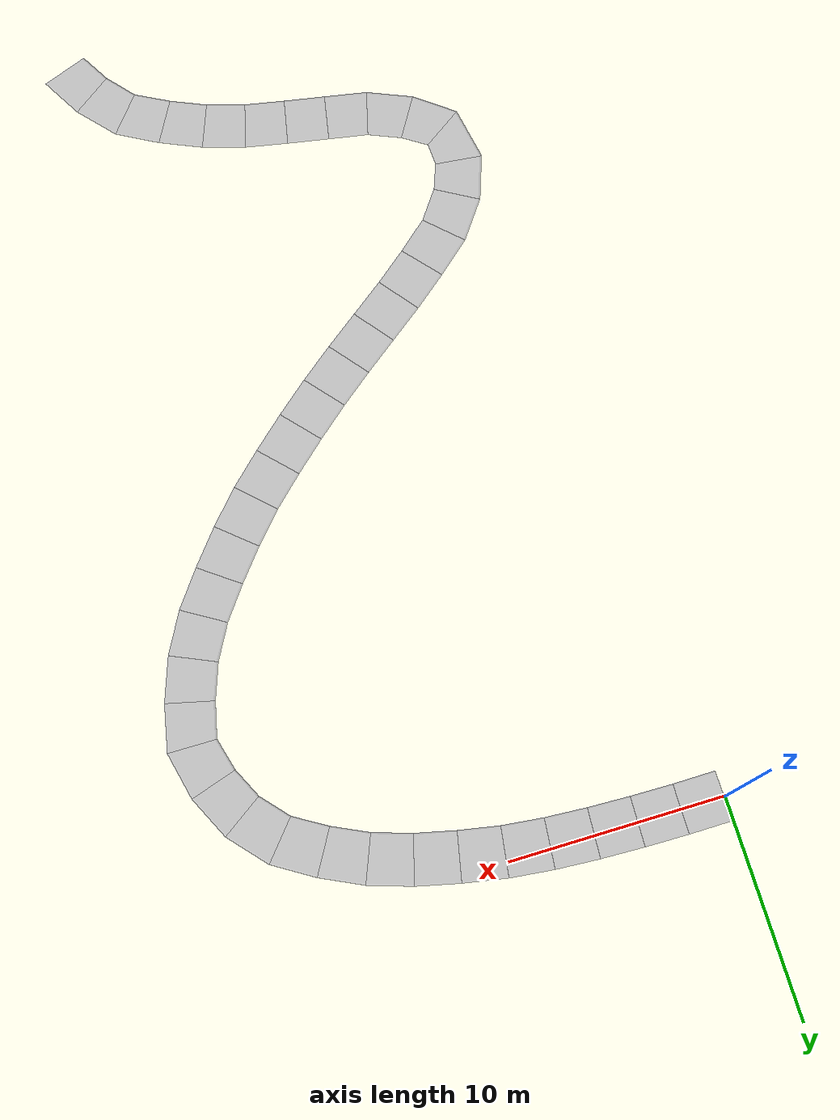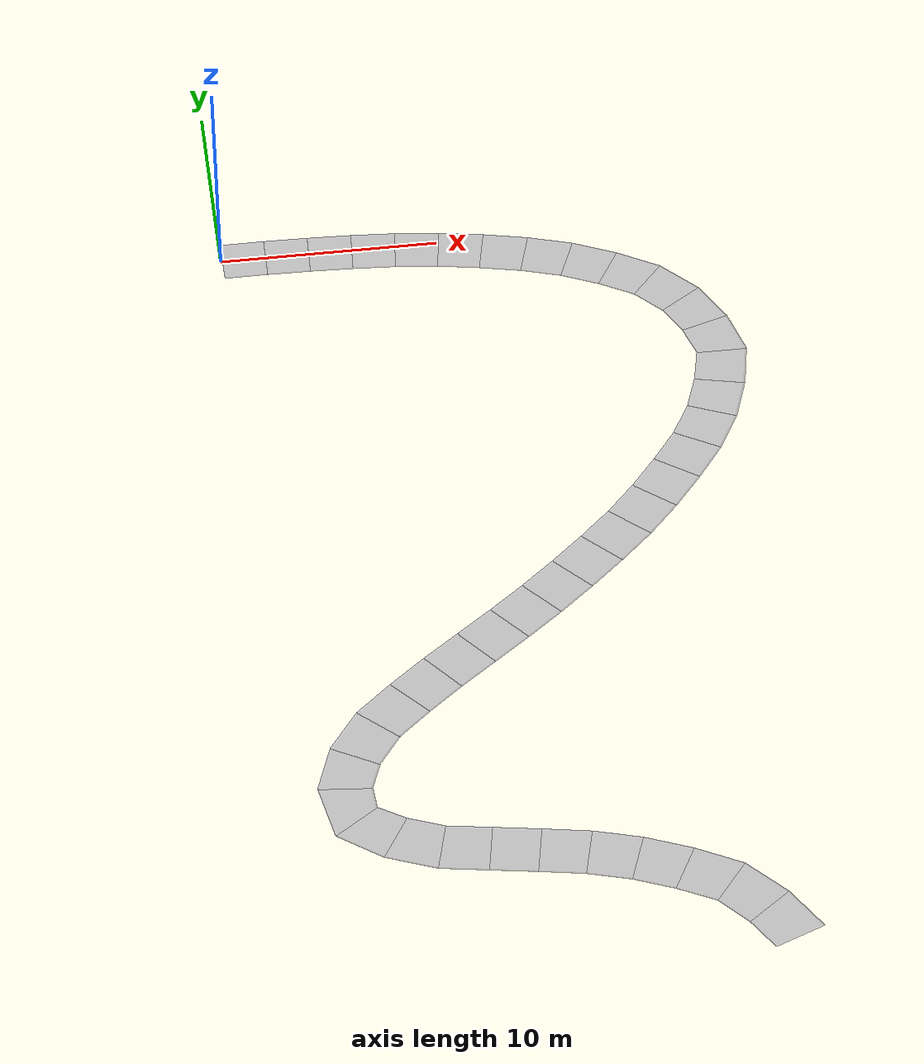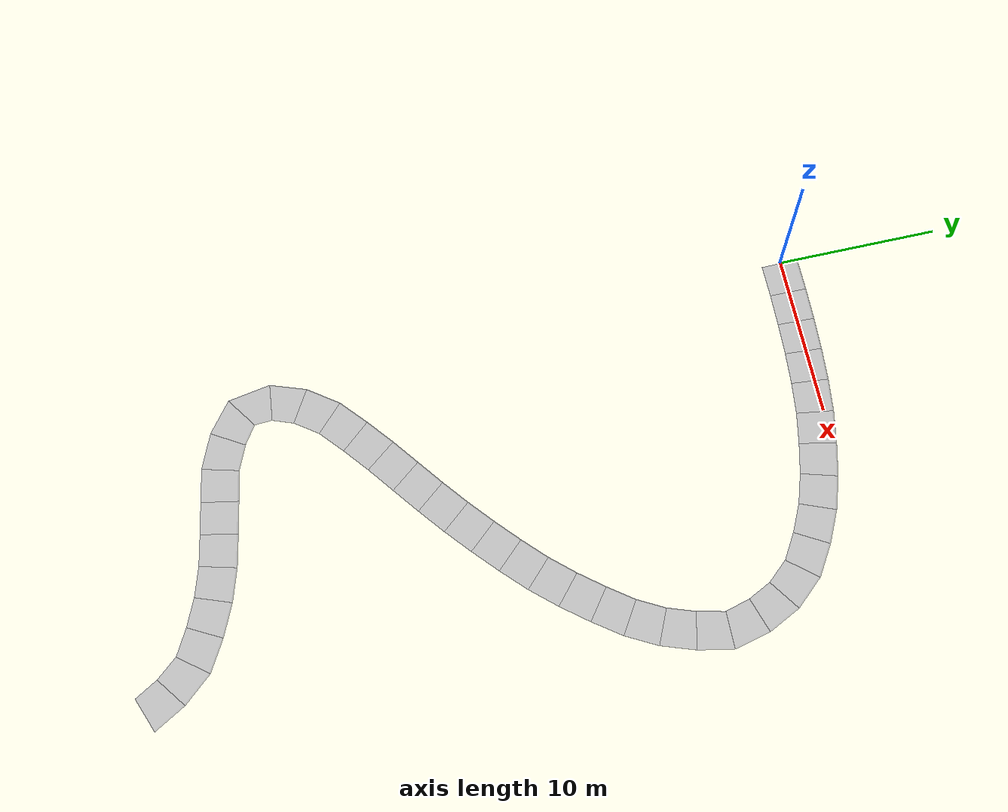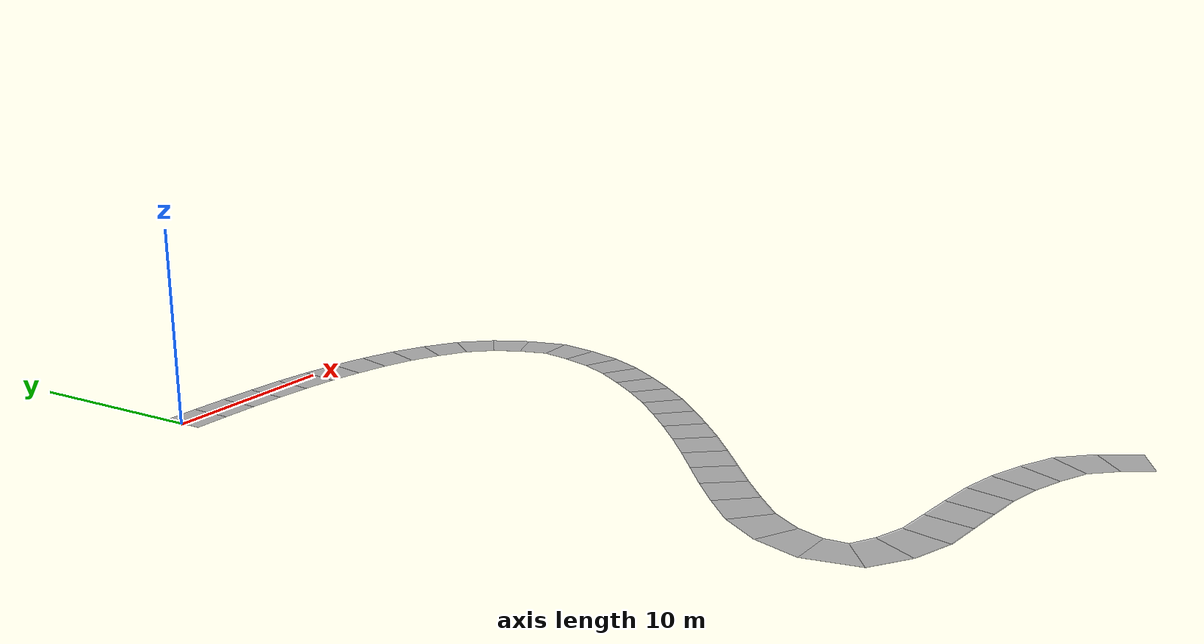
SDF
<sdf version="1.6">
 <world name="track1">
  <gravity>0 0 -9.8</gravity>
  <model name="RoadBlock.000">
   <static>1</static>
   <link name="link_d0">
    <inertial>
     <mass>0</mass>
     <inertia>
      <ixx>0.166667</ixx>
      <ixy>0</ixy>
      <ixz>0</ixz>
      <iyy>0.166667</iyy>
      <iyz>0</iyz>
      <izz>0.166667</izz>
     </inertia>
    </inertial>
    <collision concave="yes" name="collision_0">
     <geometry><mesh><scale>1 1 1</scale><uri>RoadBlock.000.obj</uri></mesh></geometry>
    </collision>
    <visual name="visual">
     <geometry><mesh><scale>1 1 1</scale><uri>RoadBlock.000.obj</uri></mesh></geometry>
    </visual>
   </link>
  </model>
  <model name="RoadBlock.001">
   <static>1</static>
   <link name="link_d0">
    <inertial>
     <mass>0</mass>
     <inertia>
      <ixx>0.166667</ixx>
      <ixy>0</ixy>
      <ixz>0</ixz>
      <iyy>0.166667</iyy>
      <iyz>0</iyz>
      <izz>0.166667</izz>
     </inertia>
    </inertial>
    <collision concave="yes" name="collision_0">
     <geometry><mesh><scale>1 1 1</scale><uri>RoadBlock.001.obj</uri></mesh></geometry>
    </collision>
    <visual name="visual">
     <geometry><mesh><scale>1 1 1</scale><uri>RoadBlock.001.obj</uri></mesh></geometry>
    </visual>
   </link>
  </model>
  <model name="RoadBlock.002">
   <static>1</static>
   <link name="link_d0">
    <inertial>
     <mass>0</mass>
     <inertia>
      <ixx>0.166667</ixx>
      <ixy>0</ixy>
      <ixz>0</ixz>
      <iyy>0.166667</iyy>
      <iyz>0</iyz>
      <izz>0.166667</izz>
     </inertia>
    </inertial>
    <collision concave="yes" name="collision_0">
     <geometry><mesh><scale>1 1 1</scale><uri>RoadBlock.002.obj</uri></mesh></geometry>
    </collision>
    <visual name="visual">
     <geometry><mesh><scale>1 1 1</scale><uri>RoadBlock.002.obj</uri></mesh></geometry>
    </visual>
   </link>
  </model>
  <model name="RoadBlock.003">
   <static>1</static>
   <link name="link_d0">
    <inertial>
     <mass>0</mass>
     <inertia>
      <ixx>0.166667</ixx>
      <ixy>0</ixy>
      <ixz>0</ixz>
      <iyy>0.166667</iyy>
      <iyz>0</iyz>
      <izz>0.166667</izz>
     </inertia>
    </inertial>
    <collision concave="yes" name="collision_0">
     <geometry><mesh><scale>1 1 1</scale><uri>RoadBlock.003.obj</uri></mesh></geometry>
    </collision>
    <visual name="visual">
     <geometry><mesh><scale>1 1 1</scale><uri>RoadBlock.003.obj</uri></mesh></geometry>
    </visual>
   </link>
  </model>
  <model name="RoadBlock.004">
   <static>1</static>
   <link name="link_d0">
    <inertial>
     <mass>0</mass>
     <inertia>
      <ixx>0.166667</ixx>
      <ixy>0</ixy>
      <ixz>0</ixz>
      <iyy>0.166667</iyy>
      <iyz>0</iyz>
      <izz>0.166667</izz>
     </inertia>
    </inertial>
    <collision concave="yes" name="collision_0">
     <geometry><mesh><scale>1 1 1</scale><uri>RoadBlock.004.obj</uri></mesh></geometry>
    </collision>
    <visual name="visual">
     <geometry><mesh><scale>1 1 1</scale><uri>RoadBlock.004.obj</uri></mesh></geometry>
    </visual>
   </link>
  </model>
  <model name="RoadBlock.005">
   <static>1</static>
   <link name="link_d0">
    <inertial>
     <mass>0</mass>
     <inertia>
      <ixx>0.166667</ixx>
      <ixy>0</ixy>
      <ixz>0</ixz>
      <iyy>0.166667</iyy>
      <iyz>0</iyz>
      <izz>0.166667</izz>
     </inertia>
    </inertial>
    <collision concave="yes" name="collision_0">
     <geometry><mesh><scale>1 1 1</scale><uri>RoadBlock.005.obj</uri></mesh></geometry>
    </collision>
    <visual name="visual">
     <geometry><mesh><scale>1 1 1</scale><uri>RoadBlock.005.obj</uri></mesh></geometry>
    </visual>
   </link>
  </model>
  <model name="RoadBlock.006">
   <static>1</static>
   <link name="link_d0">
    <inertial>
     <mass>0</mass>
     <inertia>
      <ixx>0.166667</ixx>
      <ixy>0</ixy>
      <ixz>0</ixz>
      <iyy>0.166667</iyy>
      <iyz>0</iyz>
      <izz>0.166667</izz>
     </inertia>
    </inertial>
    <collision concave="yes" name="collision_0">
     <geometry><mesh><scale>1 1 1</scale><uri>RoadBlock.006.obj</uri></mesh></geometry>
    </collision>
    <visual name="visual">
     <geometry><mesh><scale>1 1 1</scale><uri>RoadBlock.006.obj</uri></mesh></geometry>
    </visual>
   </link>
  </model>
  <model name="RoadBlock.007">
   <static>1</static>
   <link name="link_d0">
    <inertial>
     <mass>0</mass>
     <inertia>
      <ixx>0.166667</ixx>
      <ixy>0</ixy>
      <ixz>0</ixz>
      <iyy>0.166667</iyy>
      <iyz>0</iyz>
      <izz>0.166667</izz>
     </inertia>
    </inertial>
    <collision concave="yes" name="collision_0">
     <geometry><mesh><scale>1 1 1</scale><uri>RoadBlock.007.obj</uri></mesh></geometry>
    </collision>
    <visual name="visual">
     <geometry><mesh><scale>1 1 1</scale><uri>RoadBlock.007.obj</uri></mesh></geometry>
    </visual>
   </link>
  </model>
  <model name="RoadBlock.008">
   <static>1</static>
   <link name="link_d0">
    <inertial>
     <mass>0</mass>
     <inertia>
      <ixx>0.166667</ixx>
      <ixy>0</ixy>
      <ixz>0</ixz>
      <iyy>0.166667</iyy>
      <iyz>0</iyz>
      <izz>0.166667</izz>
     </inertia>
    </inertial>
    <collision concave="yes" name="collision_0">
     <geometry><mesh><scale>1 1 1</scale><uri>RoadBlock.008.obj</uri></mesh></geometry>
    </collision>
    <visual name="visual">
     <geometry><mesh><scale>1 1 1</scale><uri>RoadBlock.008.obj</uri></mesh></geometry>
    </visual>
   </link>
  </model>
  <model name="RoadBlock.009">
   <static>1</static>
   <link name="link_d0">
    <inertial>
     <mass>0</mass>
     <inertia>
      <ixx>0.166667</ixx>
      <ixy>0</ixy>
      <ixz>0</ixz>
      <iyy>0.166667</iyy>
      <iyz>0</iyz>
      <izz>0.166667</izz>
     </inertia>
    </inertial>
    <collision concave="yes" name="collision_0">
     <geometry><mesh><scale>1 1 1</scale><uri>RoadBlock.009.obj</uri></mesh></geometry>
    </collision>
    <visual name="visual">
     <geometry><mesh><scale>1 1 1</scale><uri>RoadBlock.009.obj</uri></mesh></geometry>
    </visual>
   </link>
  </model>
  <model name="RoadBlock.010">
   <static>1</static>
   <link name="link_d0">
    <inertial>
     <mass>0</mass>
     <inertia>
      <ixx>0.166667</ixx>
      <ixy>0</ixy>
      <ixz>0</ixz>
      <iyy>0.166667</iyy>
      <iyz>0</iyz>
      <izz>0.166667</izz>
     </inertia>
    </inertial>
    <collision concave="yes" name="collision_0">
     <geometry><mesh><scale>1 1 1</scale><uri>RoadBlock.010.obj</uri></mesh></geometry>
    </collision>
    <visual name="visual">
     <geometry><mesh><scale>1 1 1</scale><uri>RoadBlock.010.obj</uri></mesh></geometry>
    </visual>
   </link>
  </model>
  <model name="RoadBlock.011">
   <static>1</static>
   <link name="link_d0">
    <inertial>
     <mass>0</mass>
     <inertia>
      <ixx>0.166667</ixx>
      <ixy>0</ixy>
      <ixz>0</ixz>
      <iyy>0.166667</iyy>
      <iyz>0</iyz>
      <izz>0.166667</izz>
     </inertia>
    </inertial>
    <collision concave="yes" name="collision_0">
     <geometry><mesh><scale>1 1 1</scale><uri>RoadBlock.011.obj</uri></mesh></geometry>
    </collision>
    <visual name="visual">
     <geometry><mesh><scale>1 1 1</scale><uri>RoadBlock.011.obj</uri></mesh></geometry>
    </visual>
   </link>
  </model>
  <model name="RoadBlock.012">
   <static>1</static>
   <link name="link_d0">
    <inertial>
     <mass>0</mass>
     <inertia>
      <ixx>0.166667</ixx>
      <ixy>0</ixy>
      <ixz>0</ixz>
      <iyy>0.166667</iyy>
      <iyz>0</iyz>
      <izz>0.166667</izz>
     </inertia>
    </inertial>
    <collision concave="yes" name="collision_0">
     <geometry><mesh><scale>1 1 1</scale><uri>RoadBlock.012.obj</uri></mesh></geometry>
    </collision>
    <visual name="visual">
     <geometry><mesh><scale>1 1 1</scale><uri>RoadBlock.012.obj</uri></mesh></geometry>
    </visual>
   </link>
  </model>
  <model name="RoadBlock.013">
   <static>1</static>
   <link name="link_d0">
    <inertial>
     <mass>0</mass>
     <inertia>
      <ixx>0.166667</ixx>
      <ixy>0</ixy>
      <ixz>0</ixz>
      <iyy>0.166667</iyy>
      <iyz>0</iyz>
      <izz>0.166667</izz>
     </inertia>
    </inertial>
    <collision concave="yes" name="collision_0">
     <geometry><mesh><scale>1 1 1</scale><uri>RoadBlock.013.obj</uri></mesh></geometry>
    </collision>
    <visual name="visual">
     <geometry><mesh><scale>1 1 1</scale><uri>RoadBlock.013.obj</uri></mesh></geometry>
    </visual>
   </link>
  </model>
  <model name="RoadBlock.014">
   <static>1</static>
   <link name="link_d0">
    <inertial>
     <mass>0</mass>
     <inertia>
      <ixx>0.166667</ixx>
      <ixy>0</ixy>
      <ixz>0</ixz>
      <iyy>0.166667</iyy>
      <iyz>0</iyz>
      <izz>0.166667</izz>
     </inertia>
    </inertial>
    <collision concave="yes" name="collision_0">
     <geometry><mesh><scale>1 1 1</scale><uri>RoadBlock.014.obj</uri></mesh></geometry>
    </collision>
    <visual name="visual">
     <geometry><mesh><scale>1 1 1</scale><uri>RoadBlock.014.obj</uri></mesh></geometry>
    </visual>
   </link>
  </model>
  <model name="RoadBlock.015">
   <static>1</static>
   <link name="link_d0">
    <inertial>
     <mass>0</mass>
     <inertia>
      <ixx>0.166667</ixx>
      <ixy>0</ixy>
      <ixz>0</ixz>
      <iyy>0.166667</iyy>
      <iyz>0</iyz>
      <izz>0.166667</izz>
     </inertia>
    </inertial>
    <collision concave="yes" name="collision_0">
     <geometry><mesh><scale>1 1 1</scale><uri>RoadBlock.015.obj</uri></mesh></geometry>
    </collision>
    <visual name="visual">
     <geometry><mesh><scale>1 1 1</scale><uri>RoadBlock.015.obj</uri></mesh></geometry>
    </visual>
   </link>
  </model>
  <model name="RoadBlock.016">
   <static>1</static>
   <link name="link_d0">
    <inertial>
     <mass>0</mass>
     <inertia>
      <ixx>0.166667</ixx>
      <ixy>0</ixy>
      <ixz>0</ixz>
      <iyy>0.166667</iyy>
      <iyz>0</iyz>
      <izz>0.166667</izz>
     </inertia>
    </inertial>
    <collision concave="yes" name="collision_0">
     <geometry><mesh><scale>1 1 1</scale><uri>RoadBlock.016.obj</uri></mesh></geometry>
    </collision>
    <visual name="visual">
     <geometry><mesh><scale>1 1 1</scale><uri>RoadBlock.016.obj</uri></mesh></geometry>
    </visual>
   </link>
  </model>
  <model name="RoadBlock.017">
   <static>1</static>
   <link name="link_d0">
    <inertial>
     <mass>0</mass>
     <inertia>
      <ixx>0.166667</ixx>
      <ixy>0</ixy>
      <ixz>0</ixz>
      <iyy>0.166667</iyy>
      <iyz>0</iyz>
      <izz>0.166667</izz>
     </inertia>
    </inertial>
    <collision concave="yes" name="collision_0">
     <geometry><mesh><scale>1 1 1</scale><uri>RoadBlock.017.obj</uri></mesh></geometry>
    </collision>
    <visual name="visual">
     <geometry><mesh><scale>1 1 1</scale><uri>RoadBlock.017.obj</uri></mesh></geometry>
    </visual>
   </link>
  </model>
  <model name="RoadBlock.018">
   <static>1</static>
   <link name="link_d0">
    <inertial>
     <mass>0</mass>
     <inertia>
      <ixx>0.166667</ixx>
      <ixy>0</ixy>
      <ixz>0</ixz>
      <iyy>0.166667</iyy>
      <iyz>0</iyz>
      <izz>0.166667</izz>
     </inertia>
    </inertial>
    <collision concave="yes" name="collision_0">
     <geometry><mesh><scale>1 1 1</scale><uri>RoadBlock.018.obj</uri></mesh></geometry>
    </collision>
    <visual name="visual">
     <geometry><mesh><scale>1 1 1</scale><uri>RoadBlock.018.obj</uri></mesh></geometry>
    </visual>
   </link>
  </model>
  <model name="RoadBlock.019">
   <static>1</static>
   <link name="link_d0">
    <inertial>
     <mass>0</mass>
     <inertia>
      <ixx>0.166667</ixx>
      <ixy>0</ixy>
      <ixz>0</ixz>
      <iyy>0.166667</iyy>
      <iyz>0</iyz>
      <izz>0.166667</izz>
     </inertia>
    </inertial>
    <collision concave="yes" name="collision_0">
     <geometry><mesh><scale>1 1 1</scale><uri>RoadBlock.019.obj</uri></mesh></geometry>
    </collision>
    <visual name="visual">
     <geometry><mesh><scale>1 1 1</scale><uri>RoadBlock.019.obj</uri></mesh></geometry>
    </visual>
   </link>
  </model>
  <model name="RoadBlock.020">
   <static>1</static>
   <link name="link_d0">
    <inertial>
     <mass>0</mass>
     <inertia>
      <ixx>0.166667</ixx>
      <ixy>0</ixy>
      <ixz>0</ixz>
      <iyy>0.166667</iyy>
      <iyz>0</iyz>
      <izz>0.166667</izz>
     </inertia>
    </inertial>
    <collision concave="yes" name="collision_0">
     <geometry><mesh><scale>1 1 1</scale><uri>RoadBlock.020.obj</uri></mesh></geometry>
    </collision>
    <visual name="visual">
     <geometry><mesh><scale>1 1 1</scale><uri>RoadBlock.020.obj</uri></mesh></geometry>
    </visual>
   </link>
  </model>
  <model name="RoadBlock.021">
   <static>1</static>
   <link name="link_d0">
    <inertial>
     <mass>0</mass>
     <inertia>
      <ixx>0.166667</ixx>
      <ixy>0</ixy>
      <ixz>0</ixz>
      <iyy>0.166667</iyy>
      <iyz>0</iyz>
      <izz>0.166667</izz>
     </inertia>
    </inertial>
    <collision concave="yes" name="collision_0">
     <geometry><mesh><scale>1 1 1</scale><uri>RoadBlock.021.obj</uri></mesh></geometry>
    </collision>
    <visual name="visual">
     <geometry><mesh><scale>1 1 1</scale><uri>RoadBlock.021.obj</uri></mesh></geometry>
    </visual>
   </link>
  </model>
  <model name="RoadBlock.022">
   <static>1</static>
   <link name="link_d0">
    <inertial>
     <mass>0</mass>
     <inertia>
      <ixx>0.166667</ixx>
      <ixy>0</ixy>
      <ixz>0</ixz>
      <iyy>0.166667</iyy>
      <iyz>0</iyz>
      <izz>0.166667</izz>
     </inertia>
    </inertial>
    <collision concave="yes" name="collision_0">
     <geometry><mesh><scale>1 1 1</scale><uri>RoadBlock.022.obj</uri></mesh></geometry>
    </collision>
    <visual name="visual">
     <geometry><mesh><scale>1 1 1</scale><uri>RoadBlock.022.obj</uri></mesh></geometry>
    </visual>
   </link>
  </model>
  <model name="RoadBlock.023">
   <static>1</static>
   <link name="link_d0">
    <inertial>
     <mass>0</mass>
     <inertia>
      <ixx>0.166667</ixx>
      <ixy>0</ixy>
      <ixz>0</ixz>
      <iyy>0.166667</iyy>
      <iyz>0</iyz>
      <izz>0.166667</izz>
     </inertia>
    </inertial>
    <collision concave="yes" name="collision_0">
     <geometry><mesh><scale>1 1 1</scale><uri>RoadBlock.023.obj</uri></mesh></geometry>
    </collision>
    <visual name="visual">
     <geometry><mesh><scale>1 1 1</scale><uri>RoadBlock.023.obj</uri></mesh></geometry>
    </visual>
   </link>
  </model>
  <model name="RoadBlock.024">
   <static>1</static>
   <link name="link_d0">
    <inertial>
     <mass>0</mass>
     <inertia>
      <ixx>0.166667</ixx>
      <ixy>0</ixy>
      <ixz>0</ixz>
      <iyy>0.166667</iyy>
      <iyz>0</iyz>
      <izz>0.166667</izz>
     </inertia>
    </inertial>
    <collision concave="yes" name="collision_0">
     <geometry><mesh><scale>1 1 1</scale><uri>RoadBlock.024.obj</uri></mesh></geometry>
    </collision>
    <visual name="visual">
     <geometry><mesh><scale>1 1 1</scale><uri>RoadBlock.024.obj</uri></mesh></geometry>
    </visual>
   </link>
  </model>
  <model name="RoadBlock.025">
   <static>1</static>
   <link name="link_d0">
    <inertial>
     <mass>0</mass>
     <inertia>
      <ixx>0.166667</ixx>
      <ixy>0</ixy>
      <ixz>0</ixz>
      <iyy>0.166667</iyy>
      <iyz>0</iyz>
      <izz>0.166667</izz>
     </inertia>
    </inertial>
    <collision concave="yes" name="collision_0">
     <geometry><mesh><scale>1 1 1</scale><uri>RoadBlock.025.obj</uri></mesh></geometry>
    </collision>
    <visual name="visual">
     <geometry><mesh><scale>1 1 1</scale><uri>RoadBlock.025.obj</uri></mesh></geometry>
    </visual>
   </link>
  </model>
  <model name="RoadBlock.026">
   <static>1</static>
   <link name="link_d0">
    <inertial>
     <mass>0</mass>
     <inertia>
      <ixx>0.166667</ixx>
      <ixy>0</ixy>
      <ixz>0</ixz>
      <iyy>0.166667</iyy>
      <iyz>0</iyz>
      <izz>0.166667</izz>
     </inertia>
    </inertial>
    <collision concave="yes" name="collision_0">
     <geometry><mesh><scale>1 1 1</scale><uri>RoadBlock.026.obj</uri></mesh></geometry>
    </collision>
    <visual name="visual">
     <geometry><mesh><scale>1 1 1</scale><uri>RoadBlock.026.obj</uri></mesh></geometry>
    </visual>
   </link>
  </model>
  <model name="RoadBlock.027">
   <static>1</static>
   <link name="link_d0">
    <inertial>
     <mass>0</mass>
     <inertia>
      <ixx>0.166667</ixx>
      <ixy>0</ixy>
      <ixz>0</ixz>
      <iyy>0.166667</iyy>
      <iyz>0</iyz>
      <izz>0.166667</izz>
     </inertia>
    </inertial>
    <collision concave="yes" name="collision_0">
     <geometry><mesh><scale>1 1 1</scale><uri>RoadBlock.027.obj</uri></mesh></geometry>
    </collision>
    <visual name="visual">
     <geometry><mesh><scale>1 1 1</scale><uri>RoadBlock.027.obj</uri></mesh></geometry>
    </visual>
   </link>
  </model>
  <model name="RoadBlock.028">
   <static>1</static>
   <link name="link_d0">
    <inertial>
     <mass>0</mass>
     <inertia>
      <ixx>0.166667</ixx>
      <ixy>0</ixy>
      <ixz>0</ixz>
      <iyy>0.166667</iyy>
      <iyz>0</iyz>
      <izz>0.166667</izz>
     </inertia>
    </inertial>
    <collision concave="yes" name="collision_0">
     <geometry><mesh><scale>1 1 1</scale><uri>RoadBlock.028.obj</uri></mesh></geometry>
    </collision>
    <visual name="visual">
     <geometry><mesh><scale>1 1 1</scale><uri>RoadBlock.028.obj</uri></mesh></geometry>
    </visual>
   </link>
  </model>
  <model name="RoadBlock.029">
   <static>1</static>
   <link name="link_d0">
    <inertial>
     <mass>0</mass>
     <inertia>
      <ixx>0.166667</ixx>
      <ixy>0</ixy>
      <ixz>0</ixz>
      <iyy>0.166667</iyy>
      <iyz>0</iyz>
      <izz>0.166667</izz>
     </inertia>
    </inertial>
    <collision concave="yes" name="collision_0">
     <geometry><mesh><scale>1 1 1</scale><uri>RoadBlock.029.obj</uri></mesh></geometry>
    </collision>
    <visual name="visual">
     <geometry><mesh><scale>1 1 1</scale><uri>RoadBlock.029.obj</uri></mesh></geometry>
    </visual>
   </link>
  </model>
  <model name="RoadBlock.030">
   <static>1</static>
   <link name="link_d0">
    <inertial>
     <mass>0</mass>
     <inertia>
      <ixx>0.166667</ixx>
      <ixy>0</ixy>
      <ixz>0</ixz>
      <iyy>0.166667</iyy>
      <iyz>0</iyz>
      <izz>0.166667</izz>
     </inertia>
    </inertial>
    <collision concave="yes" name="collision_0">
     <geometry><mesh><scale>1 1 1</scale><uri>RoadBlock.030.obj</uri></mesh></geometry>
    </collision>
    <visual name="visual">
     <geometry><mesh><scale>1 1 1</scale><uri>RoadBlock.030.obj</uri></mesh></geometry>
    </visual>
   </link>
  </model>
  <model name="RoadBlock.031">
   <static>1</static>
   <link name="link_d0">
    <inertial>
     <mass>0</mass>
     <inertia>
      <ixx>0.166667</ixx>
      <ixy>0</ixy>
      <ixz>0</ixz>
      <iyy>0.166667</iyy>
      <iyz>0</iyz>
      <izz>0.166667</izz>
     </inertia>
    </inertial>
    <collision concave="yes" name="collision_0">
     <geometry><mesh><scale>1 1 1</scale><uri>RoadBlock.031.obj</uri></mesh></geometry>
    </collision>
    <visual name="visual">
     <geometry><mesh><scale>1 1 1</scale><uri>RoadBlock.031.obj</uri></mesh></geometry>
    </visual>
   </link>
  </model>
  <model name="RoadBlock.032">
   <static>1</static>
   <link name="link_d0">
    <inertial>
     <mass>0</mass>
     <inertia>
      <ixx>0.166667</ixx>
      <ixy>0</ixy>
      <ixz>0</ixz>
      <iyy>0.166667</iyy>
      <iyz>0</iyz>
      <izz>0.166667</izz>
     </inertia>
    </inertial>
    <collision concave="yes" name="collision_0">
     <geometry><mesh><scale>1 1 1</scale><uri>RoadBlock.032.obj</uri></mesh></geometry>
    </collision>
    <visual name="visual">
     <geometry><mesh><scale>1 1 1</scale><uri>RoadBlock.032.obj</uri></mesh></geometry>
    </visual>
   </link>
  </model>
  <model name="RoadBlock.033">
   <static>1</static>
   <link name="link_d0">
    <inertial>
     <mass>0</mass>
     <inertia>
      <ixx>0.166667</ixx>
      <ixy>0</ixy>
      <ixz>0</ixz>
      <iyy>0.166667</iyy>
      <iyz>0</iyz>
      <izz>0.166667</izz>
     </inertia>
    </inertial>
    <collision concave="yes" name="collision_0">
     <geometry><mesh><scale>1 1 1</scale><uri>RoadBlock.033.obj</uri></mesh></geometry>
    </collision>
    <visual name="visual">
     <geometry><mesh><scale>1 1 1</scale><uri>RoadBlock.033.obj</uri></mesh></geometry>
    </visual>
   </link>
  </model>
  <model name="RoadBlock.034">
   <static>1</static>
   <link name="link_d0">
    <inertial>
     <mass>0</mass>
     <inertia>
      <ixx>0.166667</ixx>
      <ixy>0</ixy>
      <ixz>0</ixz>
      <iyy>0.166667</iyy>
      <iyz>0</iyz>
      <izz>0.166667</izz>
     </inertia>
    </inertial>
    <collision concave="yes" name="collision_0">
     <geometry><mesh><scale>1 1 1</scale><uri>RoadBlock.034.obj</uri></mesh></geometry>
    </collision>
    <visual name="visual">
     <geometry><mesh><scale>1 1 1</scale><uri>RoadBlock.034.obj</uri></mesh></geometry>
    </visual>
   </link>
  </model>
  <model name="RoadBlock.035">
   <static>1</static>
   <link name="link_d0">
    <inertial>
     <mass>0</mass>
     <inertia>
      <ixx>0.166667</ixx>
      <ixy>0</ixy>
      <ixz>0</ixz>
      <iyy>0.166667</iyy>
      <iyz>0</iyz>
      <izz>0.166667</izz>
     </inertia>
    </inertial>
    <collision concave="yes" name="collision_0">
     <geometry><mesh><scale>1 1 1</scale><uri>RoadBlock.035.obj</uri></mesh></geometry>
    </collision>
    <visual name="visual">
     <geometry><mesh><scale>1 1 1</scale><uri>RoadBlock.035.obj</uri></mesh></geometry>
    </visual>
   </link>
  </model>
  <model name="RoadBlock.036">
   <static>1</static>
   <link name="link_d0">
    <inertial>
     <mass>0</mass>
     <inertia>
      <ixx>0.166667</ixx>
      <ixy>0</ixy>
      <ixz>0</ixz>
      <iyy>0.166667</iyy>
      <iyz>0</iyz>
      <izz>0.166667</izz>
     </inertia>
    </inertial>
    <collision concave="yes" name="collision_0">
     <geometry><mesh><scale>1 1 1</scale><uri>RoadBlock.036.obj</uri></mesh></geometry>
    </collision>
    <visual name="visual">
     <geometry><mesh><scale>1 1 1</scale><uri>RoadBlock.036.obj</uri></mesh></geometry>
    </visual>
   </link>
  </model>
  <model name="RoadBlock.037">
   <static>1</static>
   <link name="link_d0">
    <inertial>
     <mass>0</mass>
     <inertia>
      <ixx>0.166667</ixx>
      <ixy>0</ixy>
      <ixz>0</ixz>
      <iyy>0.166667</iyy>
      <iyz>0</iyz>
      <izz>0.166667</izz>
     </inertia>
    </inertial>
    <collision concave="yes" name="collision_0">
     <geometry><mesh><scale>1 1 1</scale><uri>RoadBlock.037.obj</uri></mesh></geometry>
    </collision>
    <visual name="visual">
     <geometry><mesh><scale>1 1 1</scale><uri>RoadBlock.037.obj</uri></mesh></geometry>
    </visual>
   </link>
  </model>
  <model name="RoadBlock.038">
   <static>1</static>
   <link name="link_d0">
    <inertial>
     <mass>0</mass>
     <inertia>
      <ixx>0.166667</ixx>
      <ixy>0</ixy>
      <ixz>0</ixz>
      <iyy>0.166667</iyy>
      <iyz>0</iyz>
      <izz>0.166667</izz>
     </inertia>
    </inertial>
    <collision concave="yes" name="collision_0">
     <geometry><mesh><scale>1 1 1</scale><uri>RoadBlock.038.obj</uri></mesh></geometry>
    </collision>
    <visual name="visual">
     <geometry><mesh><scale>1 1 1</scale><uri>RoadBlock.038.obj</uri></mesh></geometry>
    </visual>
   </link>
  </model>
  <model name="RoadBlock.039">
   <static>1</static>
   <link name="link_d0">
    <inertial>
     <mass>0</mass>
     <inertia>
      <ixx>0.166667</ixx>
      <ixy>0</ixy>
      <ixz>0</ixz>
      <iyy>0.166667</iyy>
      <iyz>0</iyz>
      <izz>0.166667</izz>
     </inertia>
    </inertial>
    <collision concave="yes" name="collision_0">
     <geometry><mesh><scale>1 1 1</scale><uri>RoadBlock.039.obj</uri></mesh></geometry>
    </collision>
    <visual name="visual">
     <geometry><mesh><scale>1 1 1</scale><uri>RoadBlock.039.obj</uri></mesh></geometry>
    </visual>
   </link>
  </model>
 </world>
</sdf>
